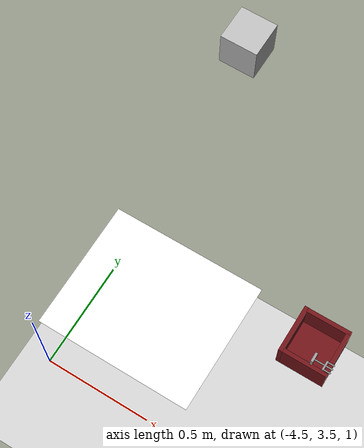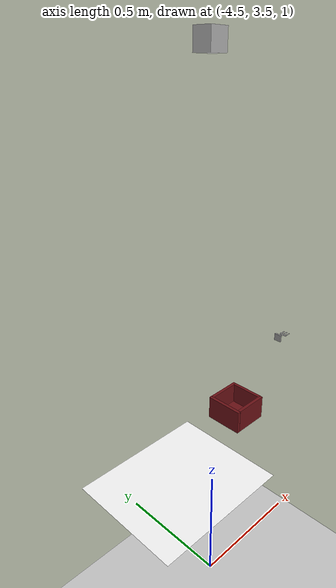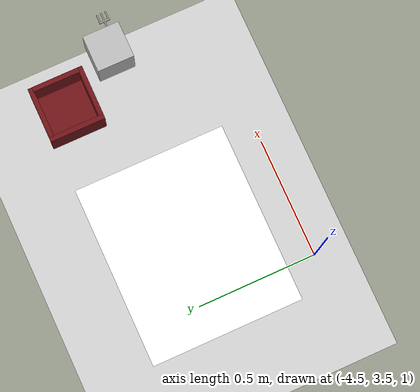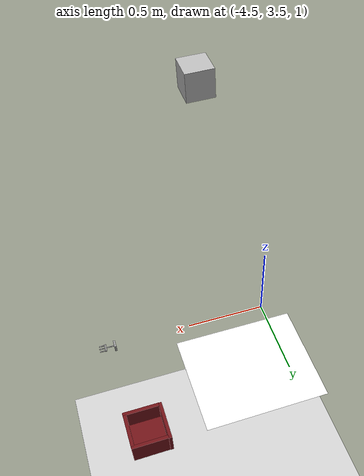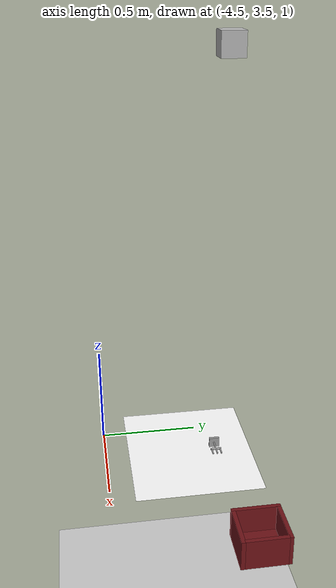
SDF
<sdf version="1.6">
 <world name="default">
  <scene><sky><clouds><speed>12</speed></clouds></sky></scene>
  <light name="sun" type="directional">
   <pose>0 0 10 0 -0 0</pose>
   <diffuse>0.8 0.8 0.8 1</diffuse>
   <specular>0.2 0.2 0.2 1</specular>
   <attenuation>
    <range>1000</range>
    <constant>0.9</constant>
    <linear>0.01</linear>
    <quadratic>0.001</quadratic>
   </attenuation>
   <direction>-0.5 0.1 -0.9</direction>
  </light>
  <model name="ground_plane">
   <static>1</static>
   <link name="link">
    <collision name="collision">
     <geometry><plane><normal>0 0 1</normal><size>100 100</size></plane></geometry>
     <surface>
      <contact><collide_bitmask>65535</collide_bitmask></contact>
      <friction><ode><mu>100</mu><mu2>50</mu2></ode></friction>
     </surface>
    </collision>
    <visual name="visual">
     <cast_shadows>0</cast_shadows>
     <geometry><plane><normal>0 0 1</normal><size>100 100</size></plane></geometry>
     <material>
      <script><uri>file://media/materials/scripts/gazebo.material</uri><name>Gazebo/Grey</name></script>
     </material>
    </visual>
   </link>
  </model>
  <gravity>0 0 -9.8</gravity>
  <magnetic_field>6e-06 2.3e-05 -4.2e-05</magnetic_field>
  <atmosphere type="adiabatic"/>
  <physics name="default_physics" default="0" type="ode">
   <max_step_size>0.001</max_step_size>
   <real_time_factor>1</real_time_factor>
   <real_time_update_rate>1000</real_time_update_rate>
  </physics>
  <scene><ambient>0.4 0.4 0.4 1</ambient><background>0.7 0.7 0.7 1</background><shadows>1</shadows></scene>
  <spherical_coordinates>
   <surface_model>EARTH_WGS84</surface_model>
   <latitude_deg>0</latitude_deg>
   <longitude_deg>0</longitude_deg>
   <elevation>0</elevation>
   <heading_deg>0</heading_deg>
  </spherical_coordinates>
  <light name="user_directional_light_0" type="directional"><pose>0 0 1 0 0 0</pose></light>
  <include><uri>model://distorted_camera</uri><pose>-4 4 3.12 3.14 1.55 3.14</pose></include>
  <include><uri>model://box_6</uri><pose>-3.2 4.20 1.05 0 0 0</pose></include>
  <include><uri>model://fourchette</uri><pose>-3.5 3.90 1.6 -1.57 0 -1.57</pose></include>
  <include><uri>model://aruco_visual_marker_planche</uri><pose>-4.26 3.94 1.02 0 0 0</pose></include>
 </world>
</sdf>

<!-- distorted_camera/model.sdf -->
<sdf version="1.5">
  <model name="distorted_camera">
    <static>true</static>
    <link name="link">
      <pose>0.05 0.05 0.05 0 0 0</pose>
      <inertial>
        <mass>0.1</mass>
        <inertia>
          <ixx>0.000166667</ixx>
          <iyy>0.000166667</iyy>
          <izz>0.000166667</izz>
        </inertia>
      </inertial>
      <collision name="collision">
        <geometry>
          <box>
            <size>0.1 0.1 0.1</size>
          </box>
        </geometry>
      </collision>
      <visual name="visual">
        <geometry>
          <box>
            <size>0.1 0.1 0.1</size>
          </box>
        </geometry>
      </visual>
      <sensor name="camera" type="camera">
        <camera>
          <horizontal_fov>1.047</horizontal_fov>
          <image>
            <width>1920</width>
            <height>1080</height>
          </image>
          <clip>
            <near>0.1</near>
            <far>100</far>
          </clip>
        </camera>
        <always_on>1</always_on>
        <update_rate>30</update_rate>
        <plugin name="camera_controller" filename="libgazebo_ros_camera.so">
          <alwaysOn>true</alwaysOn>
          <updateRate>0.0</updateRate>
          <cameraName>camera</cameraName>
          <imageTopicName>image_raw</imageTopicName>
          <cameraInfoTopicName>camera_info</cameraInfoTopicName>
          <frameName>camera_link</frameName>
          <hackBaseline>0.0</hackBaseline>
          <distortionK1>0.0</distortionK1>
          <distortionK2>0.0</distortionK2>
          <distortionK3>0.0</distortionK3>
          <distortionT1>0.0</distortionT1>
          <distortionT2>0.0</distortionT2>
      </plugin>
    </sensor>
    </link>
  </model>
</sdf>

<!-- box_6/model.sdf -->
<sdf version='1.6'>
  <model name='box_6'>
    <link name='link'>
      <inertial>
        <mass>1</mass>
        <inertia>
          <ixx>0.166667</ixx>
          <ixy>0</ixy>
          <ixz>0</ixz>
          <iyy>0.166667</iyy>
          <iyz>0</iyz>
          <izz>0.166667</izz>
        </inertia>
        <pose frame=''>0 0 0 0 -0 0</pose>
      </inertial>
      <self_collide>0</self_collide>
      <enable_wind>0</enable_wind>
      <kinematic>0</kinematic>
      <pose frame=''>-0.251848 -0.048456 -0.035389 0 -0 0</pose>
      <gravity>1</gravity>
      <visual name='visual'>
        <geometry>
          <box>
            <size>0.02 0.2 0.15</size>
          </box>
        </geometry>
        <material>
          <script>
            <name>Gazebo/Grey</name>
            <uri>file://media/materials/scripts/gazebo.material</uri>
          </script>
          <shader type='pixel'>
            <normal_map>__default__</normal_map>
          </shader>
          <ambient>0.43 0.07 0.09 1</ambient>
          <diffuse>0.43 0.07 0.09 1</diffuse>
          <specular>0.43 0.07 0.09 1</specular>
          <emissive>0 0 0 1</emissive>
        </material>
        <pose frame=''>0 0 0 0 -0 0</pose>
        <transparency>0</transparency>
        <cast_shadows>1</cast_shadows>
      </visual>
      <collision name='collision'>
        <laser_retro>0</laser_retro>
        <max_contacts>10</max_contacts>
        <pose frame=''>0 0 0 0 -0 0</pose>
        <geometry>
          <box>
            <size>0.02 0.2 0.15</size>
          </box>
        </geometry>
        <surface>
          <friction>
            <ode>
              <mu>1</mu>
              <mu2>1</mu2>
              <fdir1>0 0 0</fdir1>
              <slip1>0</slip1>
              <slip2>0</slip2>
            </ode>
            <torsional>
              <coefficient>1</coefficient>
              <patch_radius>0</patch_radius>
              <surface_radius>0</surface_radius>
              <use_patch_radius>1</use_patch_radius>
              <ode>
                <slip>0</slip>
              </ode>
            </torsional>
          </friction>
          <bounce>
            <restitution_coefficient>0</restitution_coefficient>
            <threshold>1e+06</threshold>
          </bounce>
          <contact>
            <collide_without_contact>0</collide_without_contact>
            <collide_without_contact_bitmask>1</collide_without_contact_bitmask>
            <collide_bitmask>1</collide_bitmask>
            <ode>
              <soft_cfm>0</soft_cfm>
              <soft_erp>0.2</soft_erp>
              <kp>1e+13</kp>
              <kd>1</kd>
              <max_vel>0.01</max_vel>
              <min_depth>0</min_depth>
            </ode>
            <bullet>
              <split_impulse>1</split_impulse>
              <split_impulse_penetration_threshold>-0.01</split_impulse_penetration_threshold>
              <soft_cfm>0</soft_cfm>
              <soft_erp>0.2</soft_erp>
              <kp>1e+13</kp>
              <kd>1</kd>
            </bullet>
          </contact>
        </surface>
      </collision>
    </link>
    <link name='link_0'>
      <inertial>
        <mass>1</mass>
        <inertia>
          <ixx>0.166667</ixx>
          <ixy>0</ixy>
          <ixz>0</ixz>
          <iyy>0.166667</iyy>
          <iyz>0</iyz>
          <izz>0.166667</izz>
        </inertia>
        <pose frame=''>0 0 0 0 -0 0</pose>
      </inertial>
      <pose frame=''>-0.359294 -0.047937 -0.100529 0 -3e-06 -0.000963</pose>
      <gravity>1</gravity>
      <self_collide>0</self_collide>
      <kinematic>0</kinematic>
      <enable_wind>0</enable_wind>
      <visual name='visual'>
        <pose frame=''>0 0 0 0 -0 0</pose>
        <geometry>
          <box>
            <size>0.2 0.2 0.02</size>
          </box>
        </geometry>
        <material>
          <lighting>1</lighting>
          <script>
            <uri>file://media/materials/scripts/gazebo.material</uri>
            <name>Gazebo/Grey</name>
          </script>
          <shader type='pixel'>
            <normal_map>__default__</normal_map>
          </shader>
          <ambient>0.43 0.07 0.09 1</ambient>
          <diffuse>0.43 0.07 0.09 1</diffuse>
          <specular>0.43 0.07 0.09 1</specular>
          <emissive>0 0 0 1</emissive>
        </material>
        <transparency>0</transparency>
        <cast_shadows>1</cast_shadows>
      </visual>
      <collision name='collision'>
        <laser_retro>0</laser_retro>
        <max_contacts>10</max_contacts>
        <pose frame=''>0 0 0 0 -0 0</pose>
        <geometry>
          <box>
            <size>0.2 0.2 0.02</size>
          </box>
        </geometry>
        <surface>
          <friction>
            <ode>
              <mu>1</mu>
              <mu2>1</mu2>
              <fdir1>0 0 0</fdir1>
              <slip1>0</slip1>
              <slip2>0</slip2>
            </ode>
            <torsional>
              <coefficient>1</coefficient>
              <patch_radius>0</patch_radius>
              <surface_radius>0</surface_radius>
              <use_patch_radius>1</use_patch_radius>
              <ode>
                <slip>0</slip>
              </ode>
            </torsional>
          </friction>
          <bounce>
            <restitution_coefficient>0</restitution_coefficient>
            <threshold>1e+06</threshold>
          </bounce>
          <contact>
            <collide_without_contact>0</collide_without_contact>
            <collide_without_contact_bitmask>1</collide_without_contact_bitmask>
            <collide_bitmask>1</collide_bitmask>
            <ode>
              <soft_cfm>0</soft_cfm>
              <soft_erp>0.2</soft_erp>
              <kp>1e+13</kp>
              <kd>1</kd>
              <max_vel>0.01</max_vel>
              <min_depth>0</min_depth>
            </ode>
            <bullet>
              <split_impulse>1</split_impulse>
              <split_impulse_penetration_threshold>-0.01</split_impulse_penetration_threshold>
              <soft_cfm>0</soft_cfm>
              <soft_erp>0.2</soft_erp>
              <kp>1e+13</kp>
              <kd>1</kd>
            </bullet>
          </contact>
        </surface>
      </collision>
    </link>
    <link name='link_clone'>
      <inertial>
        <mass>1</mass>
        <inertia>
          <ixx>0.166667</ixx>
          <ixy>0</ixy>
          <ixz>0</ixz>
          <iyy>0.166667</iyy>
          <iyz>0</iyz>
          <izz>0.166667</izz>
        </inertia>
        <pose frame=''>0 0 0 0 -0 0</pose>
      </inertial>
      <self_collide>0</self_collide>
      <enable_wind>0</enable_wind>
      <kinematic>0</kinematic>
      <pose frame=''>-0.464691 -0.047916 -0.036757 0 -3e-06 -0.000963</pose>
      <gravity>1</gravity>
      <visual name='visual'>
        <geometry>
          <box>
            <size>0.02 0.234 0.15</size>
          </box>
        </geometry>
        <material>
          <script>
            <name>Gazebo/Grey</name>
            <uri>file://media/materials/scripts/gazebo.material</uri>
          </script>
          <shader type='pixel'>
            <normal_map>__default__</normal_map>
          </shader>
          <ambient>0.43 0.07 0.09 1</ambient>
          <diffuse>0.43 0.07 0.09 1</diffuse>
          <specular>0.43 0.07 0.09 1</specular>
          <emissive>0 0 0 1</emissive>
        </material>
        <pose frame=''>0 0 0 0 -0 0</pose>
        <transparency>0</transparency>
        <cast_shadows>1</cast_shadows>
      </visual>
      <collision name='collision'>
        <laser_retro>0</laser_retro>
        <max_contacts>10</max_contacts>
        <pose frame=''>0 0 0 0 -0 0</pose>
        <geometry>
          <box>
            <size>0.02 0.234 0.15</size>
          </box>
        </geometry>
        <surface>
          <friction>
            <ode>
              <mu>1</mu>
              <mu2>1</mu2>
              <fdir1>0 0 0</fdir1>
              <slip1>0</slip1>
              <slip2>0</slip2>
            </ode>
            <torsional>
              <coefficient>1</coefficient>
              <patch_radius>0</patch_radius>
              <surface_radius>0</surface_radius>
              <use_patch_radius>1</use_patch_radius>
              <ode>
                <slip>0</slip>
              </ode>
            </torsional>
          </friction>
          <bounce>
            <restitution_coefficient>0</restitution_coefficient>
            <threshold>1e+06</threshold>
          </bounce>
          <contact>
            <collide_without_contact>0</collide_without_contact>
            <collide_without_contact_bitmask>1</collide_without_contact_bitmask>
            <collide_bitmask>1</collide_bitmask>
            <ode>
              <soft_cfm>0</soft_cfm>
              <soft_erp>0.2</soft_erp>
              <kp>1e+13</kp>
              <kd>1</kd>
              <max_vel>0.01</max_vel>
              <min_depth>0</min_depth>
            </ode>
            <bullet>
              <split_impulse>1</split_impulse>
              <split_impulse_penetration_threshold>-0.01</split_impulse_penetration_threshold>
              <soft_cfm>0</soft_cfm>
              <soft_erp>0.2</soft_erp>
              <kp>1e+13</kp>
              <kd>1</kd>
            </bullet>
          </contact>
        </surface>
      </collision>
    </link>
    <link name='link_clone_0'>
      <inertial>
        <mass>1.12981</mass>
        <inertia>
          <ixx>0.0153724</ixx>
          <ixy>0</ixy>
          <ixz>0</ixz>
          <iyy>0.00459456</iyy>
          <iyz>0</iyz>
          <izz>0.0108531</izz>
        </inertia>
        <pose frame=''>0 0 0 0 -0 0</pose>
      </inertial>
      <self_collide>0</self_collide>
      <enable_wind>0</enable_wind>
      <kinematic>0</kinematic>
      <pose frame=''>-0.349185 0.058201 -0.035748 0.002377 1.1e-05 -1.57022</pose>
      <gravity>1</gravity>
      <visual name='visual'>
        <geometry>
          <box>
            <size>0.02 0.214 0.15</size>
          </box>
        </geometry>
        <material>
          <script>
            <name>Gazebo/Grey</name>
            <uri>file://media/materials/scripts/gazebo.material</uri>
          </script>
          <shader type='pixel'>
            <normal_map>__default__</normal_map>
          </shader>
          <ambient>0.43 0.07 0.09 1</ambient>
          <diffuse>0.43 0.07 0.09 1</diffuse>
          <specular>0.43 0.07 0.09 1</specular>
          <emissive>0 0 0 1</emissive>
        </material>
        <pose frame=''>0 0 0 0 -0 0</pose>
        <transparency>0</transparency>
        <cast_shadows>1</cast_shadows>
      </visual>
      <collision name='collision'>
        <laser_retro>0</laser_retro>
        <max_contacts>10</max_contacts>
        <pose frame=''>0 0 0 0 -0 0</pose>
        <geometry>
          <box>
            <size>0.02 0.214 0.15</size>
          </box>
        </geometry>
        <surface>
          <friction>
            <ode>
              <mu>1</mu>
              <mu2>1</mu2>
              <fdir1>0 0 0</fdir1>
              <slip1>0</slip1>
              <slip2>0</slip2>
            </ode>
            <torsional>
              <coefficient>1</coefficient>
              <patch_radius>0</patch_radius>
              <surface_radius>0</surface_radius>
              <use_patch_radius>1</use_patch_radius>
              <ode>
                <slip>0</slip>
              </ode>
            </torsional>
          </friction>
          <bounce>
            <restitution_coefficient>0</restitution_coefficient>
            <threshold>1e+06</threshold>
          </bounce>
          <contact>
            <collide_without_contact>0</collide_without_contact>
            <collide_without_contact_bitmask>1</collide_without_contact_bitmask>
            <collide_bitmask>1</collide_bitmask>
            <ode>
              <soft_cfm>0</soft_cfm>
              <soft_erp>0.2</soft_erp>
              <kp>1e+13</kp>
              <kd>1</kd>
              <max_vel>0.01</max_vel>
              <min_depth>0</min_depth>
            </ode>
            <bullet>
              <split_impulse>1</split_impulse>
              <split_impulse_penetration_threshold>-0.01</split_impulse_penetration_threshold>
              <soft_cfm>0</soft_cfm>
              <soft_erp>0.2</soft_erp>
              <kp>1e+13</kp>
              <kd>1</kd>
            </bullet>
          </contact>
        </surface>
      </collision>
    </link>
    <link name='link_clone_0_clone'>
      <inertial>
        <mass>1.12981</mass>
        <inertia>
          <ixx>0.0153724</ixx>
          <ixy>0</ixy>
          <ixz>0</ixz>
          <iyy>0.00459456</iyy>
          <iyz>0</iyz>
          <izz>0.0108531</izz>
        </inertia>
        <pose frame=''>0 0 0 0 -0 0</pose>
      </inertial>
      <self_collide>0</self_collide>
      <enable_wind>0</enable_wind>
      <kinematic>0</kinematic>
      <pose frame=''>-0.34869 -0.155595 -0.035811 6e-06 2.2e-05 -1.57349</pose>
      <gravity>1</gravity>
      <visual name='visual'>
        <geometry>
          <box>
            <size>0.02 0.214 0.15</size>
          </box>
        </geometry>
        <material>
          <script>
            <name>Gazebo/Grey</name>
            <uri>file://media/materials/scripts/gazebo.material</uri>
          </script>
          <shader type='pixel'>
            <normal_map>__default__</normal_map>
          </shader>
          <ambient>0.43 0.07 0.09 1</ambient>
          <diffuse>0.43 0.07 0.09 1</diffuse>
          <specular>0.43 0.07 0.09 1</specular>
          <emissive>0 0 0 1</emissive>
        </material>
        <pose frame=''>0 0 0 0 -0 0</pose>
        <transparency>0</transparency>
        <cast_shadows>1</cast_shadows>
      </visual>
      <collision name='collision'>
        <laser_retro>0</laser_retro>
        <max_contacts>10</max_contacts>
        <pose frame=''>0 0 0 0 -0 0</pose>
        <geometry>
          <box>
            <size>0.02 0.214 0.15</size>
          </box>
        </geometry>
        <surface>
          <friction>
            <ode>
              <mu>1</mu>
              <mu2>1</mu2>
              <fdir1>0 0 0</fdir1>
              <slip1>0</slip1>
              <slip2>0</slip2>
            </ode>
            <torsional>
              <coefficient>1</coefficient>
              <patch_radius>0</patch_radius>
              <surface_radius>0</surface_radius>
              <use_patch_radius>1</use_patch_radius>
              <ode>
                <slip>0</slip>
              </ode>
            </torsional>
          </friction>
          <bounce>
            <restitution_coefficient>0</restitution_coefficient>
            <threshold>1e+06</threshold>
          </bounce>
          <contact>
            <collide_without_contact>0</collide_without_contact>
            <collide_without_contact_bitmask>1</collide_without_contact_bitmask>
            <collide_bitmask>1</collide_bitmask>
            <ode>
              <soft_cfm>0</soft_cfm>
              <soft_erp>0.2</soft_erp>
              <kp>1e+13</kp>
              <kd>1</kd>
              <max_vel>0.01</max_vel>
              <min_depth>0</min_depth>
            </ode>
            <bullet>
              <split_impulse>1</split_impulse>
              <split_impulse_penetration_threshold>-0.01</split_impulse_penetration_threshold>
              <soft_cfm>0</soft_cfm>
              <soft_erp>0.2</soft_erp>
              <kp>1e+13</kp>
              <kd>1</kd>
            </bullet>
          </contact>
        </surface>
      </collision>
    </link>
    <joint name='link_0_JOINT_0_0' type='fixed'>
      <parent>link_0</parent>
      <child>link_clone_0</child>
      <pose frame=''>0 0 0 0 -0 0</pose>
      <physics>
        <ode>
          <limit>
            <cfm>0</cfm>
            <erp>0.2</erp>
          </limit>
          <suspension>
            <cfm>0</cfm>
            <erp>0.2</erp>
          </suspension>
        </ode>
      </physics>
    </joint>
    <joint name='link_0_JOINT_0' type='fixed'>
      <parent>link_0</parent>
      <child>link</child>
      <pose frame=''>0 0 0 0 -0 0</pose>
      <physics>
        <ode>
          <limit>
            <cfm>0</cfm>
            <erp>0.2</erp>
          </limit>
          <suspension>
            <cfm>0</cfm>
            <erp>0.2</erp>
          </suspension>
        </ode>
      </physics>
    </joint>
    <joint name='link_0_JOINT_1' type='fixed'>
      <parent>link_0</parent>
      <child>link_clone</child>
      <pose frame=''>0 0 0 0 -0 0</pose>
      <physics>
        <ode>
          <limit>
            <cfm>0</cfm>
            <erp>0.2</erp>
          </limit>
          <suspension>
            <cfm>0</cfm>
            <erp>0.2</erp>
          </suspension>
        </ode>
      </physics>
    </joint>
    <joint name='link_0_JOINT_3' type='fixed'>
      <parent>link_0</parent>
      <child>link_clone_0_clone</child>
      <pose frame=''>0 0 0 0 -0 0</pose>
      <physics>
        <ode>
          <limit>
            <cfm>0</cfm>
            <erp>0.2</erp>
          </limit>
          <suspension>
            <cfm>0</cfm>
            <erp>0.2</erp>
          </suspension>
        </ode>
      </physics>
    </joint>
    <joint name='link_JOINT_1' type='fixed'>
      <parent>link</parent>
      <child>link_clone_0</child>
      <pose frame=''>0 0 0 0 -0 0</pose>
      <physics>
        <ode>
          <limit>
            <cfm>0</cfm>
            <erp>0.2</erp>
          </limit>
          <suspension>
            <cfm>0</cfm>
            <erp>0.2</erp>
          </suspension>
        </ode>
      </physics>
    </joint>
    <joint name='link_JOINT_4' type='fixed'>
      <parent>link</parent>
      <child>link_clone_0_clone</child>
      <pose frame=''>0 0 0 0 -0 0</pose>
      <physics>
        <ode>
          <limit>
            <cfm>0</cfm>
            <erp>0.2</erp>
          </limit>
          <suspension>
            <cfm>0</cfm>
            <erp>0.2</erp>
          </suspension>
        </ode>
      </physics>
    </joint>
    <joint name='link_clone_JOINT_2' type='fixed'>
      <parent>link_clone</parent>
      <child>link_clone_0</child>
      <pose frame=''>0 0 0 0 -0 0</pose>
      <physics>
        <ode>
          <limit>
            <cfm>0</cfm>
            <erp>0.2</erp>
          </limit>
          <suspension>
            <cfm>0</cfm>
            <erp>0.2</erp>
          </suspension>
        </ode>
      </physics>
    </joint>
    <joint name='link_clone_JOINT_5' type='revolute'>
      <parent>link_clone</parent>
      <child>link_clone_0_clone</child>
      <pose frame=''>0 0 0 0 -0 0</pose>
      <axis>
        <xyz>1 0 0</xyz>
        <use_parent_model_frame>0</use_parent_model_frame>
        <limit>
          <lower>-1.79769e+308</lower>
          <upper>1.79769e+308</upper>
          <effort>-1</effort>
          <velocity>-1</velocity>
        </limit>
        <dynamics>
          <spring_reference>0</spring_reference>
          <spring_stiffness>0</spring_stiffness>
          <damping>0</damping>
          <friction>0</friction>
        </dynamics>
      </axis>
      <physics>
        <ode>
          <limit>
            <cfm>0</cfm>
            <erp>0.2</erp>
          </limit>
          <suspension>
            <cfm>0</cfm>
            <erp>0.2</erp>
          </suspension>
        </ode>
      </physics>
    </joint>
    <static>0</static>
    <allow_auto_disable>1</allow_auto_disable>
  </model>
</sdf>

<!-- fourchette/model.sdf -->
<sdf version='1.6'>
  <model name='fourchette'>
    <link name='link'>
      <inertial>
        <mass>0.0336431</mass>
        <inertia>
          <ixx>4.51e-06</ixx>
          <ixy>0</ixy>
          <ixz>0</ixz>
          <iyy>4.51e-06</iyy>
          <iyz>0</iyz>
          <izz>8.97e-06</izz>
        </inertia>
        <pose frame=''>0 0 0 0 -0 0</pose>
      </inertial>
      <self_collide>0</self_collide>
      <enable_wind>0</enable_wind>
      <kinematic>0</kinematic>
      <pose frame=''>-0.017139 0.018322 0 0 -0 0</pose>
      <gravity>1</gravity>
      <visual name='visual'>
        <geometry>
          <box>
            <size>0.04 0.04 0.01</size>
          </box>
        </geometry>
        <material>
          <script>
            <name>Gazebo/Grey</name>
            <uri>file://media/materials/scripts/gazebo.material</uri>
          </script>
          <emissive>0 0 0 1</emissive>
          <shader type='vertex'>
            <normal_map>__default__</normal_map>
          </shader>
          <ambient>0.75 0.75 0.75 1</ambient>
          <diffuse>0.75 0.75 0.75 1</diffuse>
          <specular>0.75 0.75 0.75 1</specular>
        </material>
        <pose frame=''>0 0 0 0 -0 0</pose>
        <transparency>0</transparency>
        <cast_shadows>1</cast_shadows>
      </visual>
      <collision name='collision'>
        <laser_retro>0</laser_retro>
        <max_contacts>10</max_contacts>
        <pose frame=''>0 0 0 0 -0 0</pose>
        <geometry>
          <box>
            <size>0.04 0.04 0.01</size>
          </box>
        </geometry>
        <surface>
          <friction>
            <ode>
              <mu>1</mu>
              <mu2>1</mu2>
              <fdir1>0 0 0</fdir1>
              <slip1>0</slip1>
              <slip2>0</slip2>
            </ode>
            <torsional>
              <coefficient>1</coefficient>
              <patch_radius>0</patch_radius>
              <surface_radius>0</surface_radius>
              <use_patch_radius>1</use_patch_radius>
              <ode>
                <slip>0</slip>
              </ode>
            </torsional>
          </friction>
          <bounce>
            <restitution_coefficient>0</restitution_coefficient>
            <threshold>1e+06</threshold>
          </bounce>
          <contact>
            <collide_without_contact>0</collide_without_contact>
            <collide_without_contact_bitmask>1</collide_without_contact_bitmask>
            <collide_bitmask>1</collide_bitmask>
            <ode>
              <soft_cfm>0</soft_cfm>
              <soft_erp>0.2</soft_erp>
              <kp>1e+13</kp>
              <kd>1</kd>
              <max_vel>0.01</max_vel>
              <min_depth>0</min_depth>
            </ode>
            <bullet>
              <split_impulse>1</split_impulse>
              <split_impulse_penetration_threshold>-0.01</split_impulse_penetration_threshold>
              <soft_cfm>0</soft_cfm>
              <soft_erp>0.2</soft_erp>
              <kp>1e+13</kp>
              <kd>1</kd>
            </bullet>
          </contact>
        </surface>
      </collision>
    </link>
    <link name='link_0'>
      <inertial>
        <mass>2.88685e-06</mass>
        <inertia>
          <ixx>1.44637e-09</ixx>
          <ixy>0</ixy>
          <ixz>0</ixz>
          <iyy>1.44637e-09</iyy>
          <iyz>0</iyz>
          <izz>1.26277e-11</izz>
        </inertia>
        <pose frame=''>0 0 0 0 -0 0</pose>
      </inertial>
      <pose frame=''>-0.015604 0.017977 0.043354 0 -0 3e-06</pose>
      <self_collide>0</self_collide>
      <enable_wind>0</enable_wind>
      <kinematic>0</kinematic>
      <visual name='visual'>
        <pose frame=''>0 0 0 0 -0 0</pose>
        <geometry>
          <cylinder>
            <radius>0.0029579</radius>
            <length>0.0773691</length>
          </cylinder>
        </geometry>
        <material>
          <lighting>1</lighting>
          <script>
            <uri>file://media/materials/scripts/gazebo.material</uri>
            <name>Gazebo/Grey</name>
          </script>
          <emissive>0 0 0 1</emissive>
          <shader type='pixel'/>
        </material>
        <transparency>0</transparency>
        <cast_shadows>1</cast_shadows>
      </visual>
      <collision name='collision'>
        <laser_retro>0</laser_retro>
        <max_contacts>10</max_contacts>
        <pose frame=''>0 0 0 0 -0 0</pose>
        <geometry>
          <cylinder>
            <radius>0.003</radius>
            <length>0.077369</length>
          </cylinder>
        </geometry>
        <surface>
          <friction>
            <ode>
              <mu>1</mu>
              <mu2>1</mu2>
              <fdir1>0 0 0</fdir1>
              <slip1>0</slip1>
              <slip2>0</slip2>
            </ode>
            <torsional>
              <coefficient>1</coefficient>
              <patch_radius>0</patch_radius>
              <surface_radius>0</surface_radius>
              <use_patch_radius>1</use_patch_radius>
              <ode>
                <slip>0</slip>
              </ode>
            </torsional>
          </friction>
          <bounce>
            <restitution_coefficient>0</restitution_coefficient>
            <threshold>1e+06</threshold>
          </bounce>
          <contact>
            <collide_without_contact>0</collide_without_contact>
            <collide_without_contact_bitmask>1</collide_without_contact_bitmask>
            <collide_bitmask>1</collide_bitmask>
            <ode>
              <soft_cfm>0</soft_cfm>
              <soft_erp>0.2</soft_erp>
              <kp>1e+13</kp>
              <kd>1</kd>
              <max_vel>0.01</max_vel>
              <min_depth>0</min_depth>
            </ode>
            <bullet>
              <split_impulse>1</split_impulse>
              <split_impulse_penetration_threshold>-0.01</split_impulse_penetration_threshold>
              <soft_cfm>0</soft_cfm>
              <soft_erp>0.2</soft_erp>
              <kp>1e+13</kp>
              <kd>1</kd>
            </bullet>
          </contact>
        </surface>
      </collision>
    </link>
    <link name='link_0_0'>
      <inertial>
        <mass>3.07383e-06</mass>
        <inertia>
          <ixx>4.44893e-10</ixx>
          <ixy>0</ixy>
          <ixz>0</ixz>
          <iyy>4.44893e-10</iyy>
          <iyz>0</iyz>
          <izz>2.94964e-11</izz>
        </inertia>
        <pose frame=''>0 0 0 0 -0 0</pose>
      </inertial>
      <pose frame=''>-0.015297 0.018344 0.049109 2.52561 1.55224 2.52541</pose>
      <self_collide>0</self_collide>
      <enable_wind>0</enable_wind>
      <kinematic>0</kinematic>
      <visual name='visual'>
        <pose frame=''>0 0 0 0 -0 0</pose>
        <geometry>
          <cylinder>
            <radius>0.00438092</radius>
            <length>0.0409787</length>
          </cylinder>
        </geometry>
        <material>
          <lighting>1</lighting>
          <script>
            <uri>file://media/materials/scripts/gazebo.material</uri>
            <name>Gazebo/Grey</name>
          </script>
          <emissive>0 0 0 1</emissive>
          <shader type='pixel'/>
        </material>
        <transparency>0</transparency>
        <cast_shadows>1</cast_shadows>
      </visual>
      <collision name='collision'>
        <laser_retro>0</laser_retro>
        <max_contacts>10</max_contacts>
        <pose frame=''>0 0 0 0 -0 0</pose>
        <geometry>
          <cylinder>
            <radius>0.004381</radius>
            <length>0.040979</length>
          </cylinder>
        </geometry>
        <surface>
          <friction>
            <ode>
              <mu>1</mu>
              <mu2>1</mu2>
              <fdir1>0 0 0</fdir1>
              <slip1>0</slip1>
              <slip2>0</slip2>
            </ode>
            <torsional>
              <coefficient>1</coefficient>
              <patch_radius>0</patch_radius>
              <surface_radius>0</surface_radius>
              <use_patch_radius>1</use_patch_radius>
              <ode>
                <slip>0</slip>
              </ode>
            </torsional>
          </friction>
          <bounce>
            <restitution_coefficient>0</restitution_coefficient>
            <threshold>1e+06</threshold>
          </bounce>
          <contact>
            <collide_without_contact>0</collide_without_contact>
            <collide_without_contact_bitmask>1</collide_without_contact_bitmask>
            <collide_bitmask>1</collide_bitmask>
            <ode>
              <soft_cfm>0</soft_cfm>
              <soft_erp>0.2</soft_erp>
              <kp>1e+13</kp>
              <kd>1</kd>
              <max_vel>0.01</max_vel>
              <min_depth>0</min_depth>
            </ode>
            <bullet>
              <split_impulse>1</split_impulse>
              <split_impulse_penetration_threshold>-0.01</split_impulse_penetration_threshold>
              <soft_cfm>0</soft_cfm>
              <soft_erp>0.2</soft_erp>
              <kp>1e+13</kp>
              <kd>1</kd>
            </bullet>
          </contact>
        </surface>
      </collision>
    </link>
    <link name='link_0_1_clone'>
      <inertial>
        <mass>1.06115e-06</mass>
        <inertia>
          <ixx>9.99492e-11</ixx>
          <ixy>0</ixy>
          <ixz>0</ixz>
          <iyy>9.99492e-11</iyy>
          <iyz>0</iyz>
          <izz>4.686e-12</izz>
        </inertia>
        <pose frame=''>0 0 0 0 -0 0</pose>
      </inertial>
      <pose frame=''>-0.03203 0.018415 0.064431 -0.000238 -1.8e-05 -3.14052</pose>
      <self_collide>0</self_collide>
      <enable_wind>0</enable_wind>
      <kinematic>0</kinematic>
      <visual name='visual_0'>
        <pose frame=''>0 0 0 0 -0 0</pose>
        <geometry>
          <cylinder>
            <radius>0.00297167</radius>
            <length>0.0332233</length>
          </cylinder>
        </geometry>
        <material>
          <lighting>1</lighting>
          <script>
            <uri>file://media/materials/scripts/gazebo.material</uri>
            <name>Gazebo/Grey</name>
          </script>
          <shader type='pixel'/>
          <emissive>0 0 0 1</emissive>
        </material>
        <transparency>0</transparency>
        <cast_shadows>1</cast_shadows>
      </visual>
      <collision name='collision'>
        <laser_retro>0</laser_retro>
        <max_contacts>10</max_contacts>
        <pose frame=''>0 0 0 0 -0 0</pose>
        <geometry>
          <cylinder>
            <radius>0.002972</radius>
            <length>0.033223</length>
          </cylinder>
        </geometry>
        <surface>
          <friction>
            <ode>
              <mu>1</mu>
              <mu2>1</mu2>
              <fdir1>0 0 0</fdir1>
              <slip1>0</slip1>
              <slip2>0</slip2>
            </ode>
            <torsional>
              <coefficient>1</coefficient>
              <patch_radius>0</patch_radius>
              <surface_radius>0</surface_radius>
              <use_patch_radius>1</use_patch_radius>
              <ode>
                <slip>0</slip>
              </ode>
            </torsional>
          </friction>
          <bounce>
            <restitution_coefficient>0</restitution_coefficient>
            <threshold>1e+06</threshold>
          </bounce>
          <contact>
            <collide_without_contact>0</collide_without_contact>
            <collide_without_contact_bitmask>1</collide_without_contact_bitmask>
            <collide_bitmask>1</collide_bitmask>
            <ode>
              <soft_cfm>0</soft_cfm>
              <soft_erp>0.2</soft_erp>
              <kp>1e+13</kp>
              <kd>1</kd>
              <max_vel>0.01</max_vel>
              <min_depth>0</min_depth>
            </ode>
            <bullet>
              <split_impulse>1</split_impulse>
              <split_impulse_penetration_threshold>-0.01</split_impulse_penetration_threshold>
              <soft_cfm>0</soft_cfm>
              <soft_erp>0.2</soft_erp>
              <kp>1e+13</kp>
              <kd>1</kd>
            </bullet>
          </contact>
        </surface>
      </collision>
    </link>
    <link name='link_0_1_clone_clone'>
      <inertial>
        <mass>1.06115e-06</mass>
        <inertia>
          <ixx>9.99492e-11</ixx>
          <ixy>0</ixy>
          <ixz>0</ixz>
          <iyy>9.99492e-11</iyy>
          <iyz>0</iyz>
          <izz>4.686e-12</izz>
        </inertia>
        <pose frame=''>0 0 0 0 -0 0</pose>
      </inertial>
      <pose frame=''>0.001244 0.018559 0.064434 -0.000128 0.000109 -1.61478</pose>
      <self_collide>0</self_collide>
      <enable_wind>0</enable_wind>
      <kinematic>0</kinematic>
      <visual name='visual_0'>
        <pose frame=''>0 0 0 0 -0 0</pose>
        <geometry>
          <cylinder>
            <radius>0.00297167</radius>
            <length>0.0332233</length>
          </cylinder>
        </geometry>
        <material>
          <lighting>1</lighting>
          <script>
            <uri>file://media/materials/scripts/gazebo.material</uri>
            <name>Gazebo/Grey</name>
          </script>
          <shader type='pixel'/>
          <emissive>0 0 0 1</emissive>
        </material>
        <transparency>0</transparency>
        <cast_shadows>1</cast_shadows>
      </visual>
      <collision name='collision'>
        <laser_retro>0</laser_retro>
        <max_contacts>10</max_contacts>
        <pose frame=''>0 0 0 0 -0 0</pose>
        <geometry>
          <cylinder>
            <radius>0.002972</radius>
            <length>0.033223</length>
          </cylinder>
        </geometry>
        <surface>
          <friction>
            <ode>
              <mu>1</mu>
              <mu2>1</mu2>
              <fdir1>0 0 0</fdir1>
              <slip1>0</slip1>
              <slip2>0</slip2>
            </ode>
            <torsional>
              <coefficient>1</coefficient>
              <patch_radius>0</patch_radius>
              <surface_radius>0</surface_radius>
              <use_patch_radius>1</use_patch_radius>
              <ode>
                <slip>0</slip>
              </ode>
            </torsional>
          </friction>
          <bounce>
            <restitution_coefficient>0</restitution_coefficient>
            <threshold>1e+06</threshold>
          </bounce>
          <contact>
            <collide_without_contact>0</collide_without_contact>
            <collide_without_contact_bitmask>1</collide_without_contact_bitmask>
            <collide_bitmask>1</collide_bitmask>
            <ode>
              <soft_cfm>0</soft_cfm>
              <soft_erp>0.2</soft_erp>
              <kp>1e+13</kp>
              <kd>1</kd>
              <max_vel>0.01</max_vel>
              <min_depth>0</min_depth>
            </ode>
            <bullet>
              <split_impulse>1</split_impulse>
              <split_impulse_penetration_threshold>-0.01</split_impulse_penetration_threshold>
              <soft_cfm>0</soft_cfm>
              <soft_erp>0.2</soft_erp>
              <kp>1e+13</kp>
              <kd>1</kd>
            </bullet>
          </contact>
        </surface>
      </collision>
    </link>
    <joint name='link_0_0_JOINT_0' type='fixed'>
      <parent>link_0_0</parent>
      <child>link_0_1_clone</child>
      <pose frame=''>0 0 0 0 -0 0</pose>
      <physics>
        <ode>
          <limit>
            <cfm>0</cfm>
            <erp>0.2</erp>
          </limit>
          <suspension>
            <cfm>0</cfm>
            <erp>0.2</erp>
          </suspension>
        </ode>
      </physics>
    </joint>
    <joint name='link_0_0_JOINT_1' type='fixed'>
      <parent>link_0_0</parent>
      <child>link_0_1_clone_clone</child>
      <pose frame=''>0 0 0 0 -0 0</pose>
      <physics>
        <ode>
          <limit>
            <cfm>0</cfm>
            <erp>0.2</erp>
          </limit>
          <suspension>
            <cfm>0</cfm>
            <erp>0.2</erp>
          </suspension>
        </ode>
      </physics>
    </joint>
    <joint name='link_0_JOINT_0' type='fixed'>
      <parent>link_0</parent>
      <child>link_0_0</child>
      <pose frame=''>0 0 0 0 -0 0</pose>
      <physics>
        <ode>
          <limit>
            <cfm>0</cfm>
            <erp>0.2</erp>
          </limit>
          <suspension>
            <cfm>0</cfm>
            <erp>0.2</erp>
          </suspension>
        </ode>
      </physics>
    </joint>
    <joint name='link_JOINT_0' type='fixed'>
      <parent>link</parent>
      <child>link_0</child>
      <pose frame=''>0 0 0 0 -0 0</pose>
      <physics>
        <ode>
          <limit>
            <cfm>0</cfm>
            <erp>0.2</erp>
          </limit>
          <suspension>
            <cfm>0</cfm>
            <erp>0.2</erp>
          </suspension>
        </ode>
      </physics>
    </joint>
    <static>0</static>
    <allow_auto_disable>1</allow_auto_disable>
  </model>
</sdf>

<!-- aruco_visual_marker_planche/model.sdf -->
<sdf version='1.5'>
  <model name='aruco_visual_marker_planche'>

    <link name='marker'>
      <pose frame=''>0 0 0 0 0 0</pose>
      <visual name='visual'>
        <geometry>
          <box>
            <size>0.76 0.64 1e-5</size>
          </box>
        </geometry>
        <material>
          <script>
            <uri>model://aruco_visual_marker_planche/materials/scripts</uri>
            <uri>model://aruco_visual_marker_planche/materials/textures</uri>
            <name>ArucoVisualMarkerPlanche/Marker</name>
          </script>
          <ambient>1 1 1 1</ambient>
          <diffuse>1 1 1 1</diffuse>
          <specular>0 0 0 1</specular>
          <emissive>1 1 1 0</emissive>
          <shader type='vertex'>
            <normal_map>__default__</normal_map>
          </shader>
        </material>
        <pose frame=''>0 0 0 0 -0 0</pose>
        <cast_shadows>1</cast_shadows>
        <transparency>0</transparency>
      </visual>
      <collision name='collision'>
        <laser_retro>0</laser_retro>
        <max_contacts>10</max_contacts>
        <pose frame=''>0 0 0 0 -0 0</pose>
        <geometry>
          <box>
            <size>0.76 0.64 1e-05</size>
          </box>
        </geometry>
      </collision>
    </link>

    <link name='marker_pad'>
      <pose frame='marker'>0 0 -1e-5 0 -0 0</pose>
      <visual name='visual'>
        <geometry>
          <box>
            <size>0.76 0.64 1e-5</size>
          </box>
        </geometry>
        <material>
          <lighting>1</lighting>
          <script>
            <uri>file://media/materials/scripts/gazebo.material</uri>
            <name>Gazebo/White</name>
          </script>
          <ambient>0.3 0.3 0.3 1</ambient>
          <diffuse>0.7 0.7 0.7 1</diffuse>
          <specular>0.01 0.01 0.01 1</specular>
          <emissive>1 1 1 0</emissive>
          <shader type='vertex'>
            <normal_map>__default__</normal_map>
          </shader>
        </material>
        <cast_shadows>1</cast_shadows>
        <transparency>0</transparency>
      </visual>
      <collision name='collision'>
        <laser_retro>0</laser_retro>
        <max_contacts>10</max_contacts>
        <pose frame=''>0 0 0 0 -0 0</pose>
        <geometry>
          <box>
            <size>0.76 0.64 1e-5</size>
          </box>
        </geometry>
      </collision>
    </link>

    <joint name='marker_JOINT_marker_pad' type='revolute'>
      <parent>marker</parent>
      <child>marker_pad</child>
      <pose frame=''>0 0 0 0 -0 0</pose>
      <axis>
        <xyz>0 0 1</xyz>
        <limit>
          <upper>0</upper>
          <lower>0</lower>
        </limit>
      </axis>
    </joint>

    <static>1</static>
    <allow_auto_disable>1</allow_auto_disable>

  </model>
</sdf>
